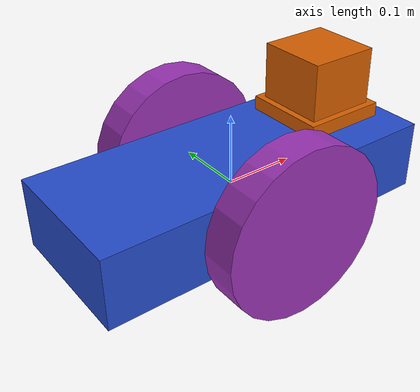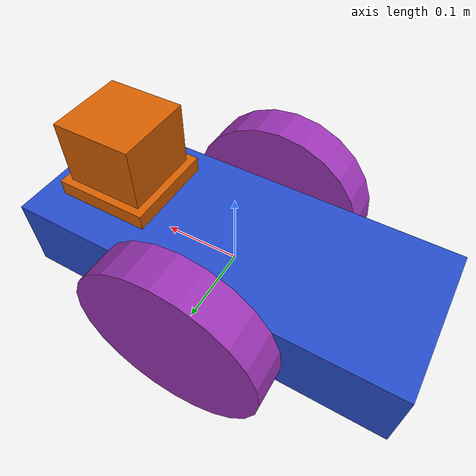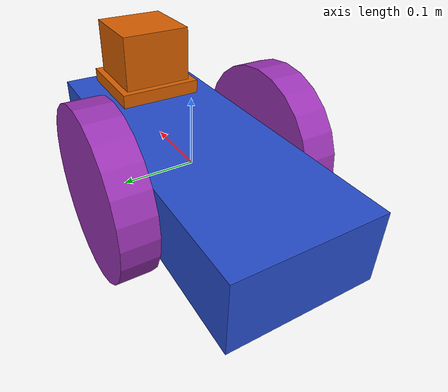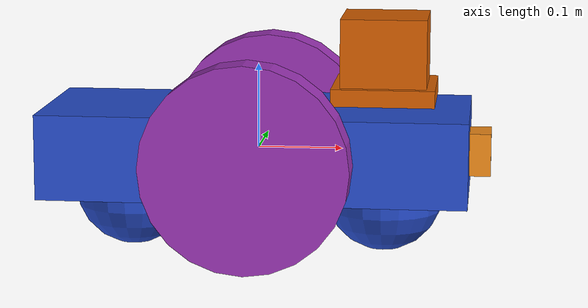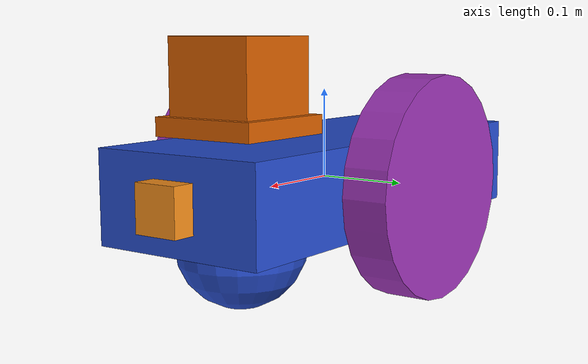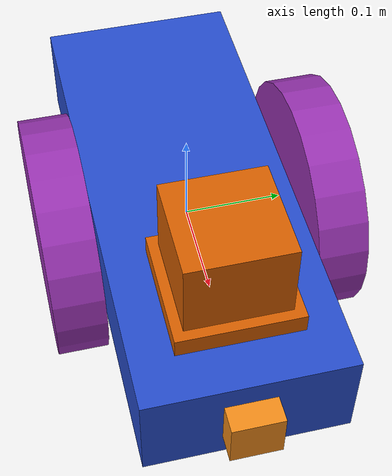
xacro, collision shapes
<robot name="my_robot" xmlns:xacro="http://www.ros.org/wiki/xacro">
<xacro:include filename="$(find my_robot)/urdf/my_robot.gazebo" />

  <link name="robot_footprint"></link>

  <joint name="robot_footprint_joint" type="fixed">
    <origin xyz="0 0 0" rpy="0 0 0" />
    <parent link="robot_footprint"/>
    <child link="chassis" />
  </joint>

  <link name='chassis'>
    <inertial>
      <mass value="15.0"/>
      <origin xyz="0.0 0 0" rpy=" 0 0 0"/>
      <inertia
          ixx="0.1" ixy="0" ixz="0"
          iyy="0.1" iyz="0"
          izz="0.1"
      />
    </inertial>

    <collision name='collision'>
      <origin xyz="0 0 0" rpy=" 0 0 0"/>
      <geometry>
        <box size=".5 .2 .1"/>
      </geometry>
    </collision>

    <visual name='chassis_visual'>
      <origin xyz="0 0 0" rpy=" 0 0 0"/>
      <geometry>
        <box size=".5 .2 .1"/>
      </geometry>
    </visual>

    <collision name='front_caster_collision'>
      <origin xyz="-0.15 0 -0.05" rpy=" 0 0 0"/>
      <geometry>
        <sphere radius="0.07"/>
      </geometry>
    </collision>

    <visual name='front_caster_visual'>
      <origin xyz="-0.15 0 -0.05" rpy=" 0 0 0"/>
      <geometry>
        <sphere radius="0.07"/>
      </geometry>
    </visual>

    <collision name='back_caster_collision'>
      <origin xyz="0.15 0 -0.05" rpy=" 0 0 0"/>
      <geometry>
        <sphere radius="0.07"/>
      </geometry>
    </collision>

    <visual name='back_caster_visual'>
      <origin xyz="0.15 0 -0.05" rpy=" 0 0 0"/>
      <geometry>
        <sphere radius="0.07"/>
      </geometry>
    </visual>

  </link>

  <link name='left_wheel'>
    <inertial>
      <mass value="5.0"/>
      <origin xyz="0.0 0 0" rpy=" 0 0 0"/>
      <inertia
        ixx="0.1" ixy="0" ixz="0"
        iyy="0.1" iyz="0"
        izz="0.1"
      />
    </inertial>

    <collision name='left_wheel_collision'>
      <origin xyz="0 0 0" rpy=" 0 1.5707 1.5707"/>
      <geometry>
        <cylinder radius="0.12" length="0.05"/>
      </geometry>
    </collision>

    <visual name='left_wheel_visual'>
      <origin xyz="0 0 0" rpy=" 0 1.5707 1.5707"/>
      <geometry>
        <cylinder radius="0.12" length="0.05"/>
      </geometry>
    </visual>

  </link>

  <joint name="left_wheel_hinge" type="continuous">
    <origin xyz="0 -0.13 0" rpy="0 0 0" />
    <axis xyz="0 1 0" rpy="0 0 0"/>
    <limit effort="10000" velocity="1000"/>
    <dynamics damping="1.0" friction="1.0"/>
    <parent link="chassis"/>
    <child link="left_wheel" />
  </joint>

  <link name='right_wheel'>
    <inertial>
      <mass value="5.0"/>
      <origin xyz="0.0 0 0" rpy=" 0 0 0"/>
      <inertia
        ixx="0.1" ixy="0" ixz="0"
        iyy="0.1" iyz="0"
        izz="0.1"
      />
    </inertial>

    <collision name='right_wheel_collision'>
      <origin xyz="0 0 0" rpy=" 0 1.5707 1.5707"/>
      <geometry>
        <cylinder radius="0.12" length="0.05"/>
      </geometry>
    </collision>

    <visual name='right_wheel_visual'>
      <origin xyz="0 0 0" rpy=" 0 1.5707 1.5707"/>
      <geometry>
        <cylinder radius="0.12" length="0.05"/>
      </geometry>
    </visual>

  </link>

  <joint name="right_wheel_hinge" type="continuous">
    <origin xyz="0 0.13 0" rpy="0 0 0" />
    <axis xyz="0 1 0" rpy="0 0 0"/>
    <limit effort="10000" velocity="1000"/>
    <dynamics damping="1.0" friction="1.0"/>
    <parent link="chassis"/>
    <child link="right_wheel" />
  </joint>

<gazebo reference="chassis">
    <material>Gazebo/BlueGlow</material>
</gazebo>

<gazebo reference="left_wheel">
    <material>Gazebo/PurpleGlow</material>
</gazebo>

<gazebo reference="right_wheel">
    <material>Gazebo/PurpleGlow</material>
</gazebo>

  <link name="camera">
    <origin xyz="0 0 0" rpy="0 0 0" />

    <inertial>
      <mass value="0.1"/>
      <origin xyz="0.0 0 0" rpy=" 0 0 0"/>
      <inertia ixx="1e-6" ixy="0" ixz="0" iyy="1e-6" iyz="0" izz="1e-6" />
    </inertial>

    <collision>
      <origin xyz="0 0 0" rpy=" 0 0 0"/>
      <geometry>
        <box size=".05 .05 .05"/>
      </geometry>
    </collision>

    <visual>
      <origin xyz="0 0 0" rpy=" 0 0 0"/>
      <geometry>
        <box size=".05 .05 .05"/>
      </geometry>
    </visual>

  </link>

  <joint name="camera_joint" type="fixed">
    <axis xyz="0 1 0" rpy="0 0 0"/>
    <origin xyz="0.25 0 0" rpy="0 0 0" />
    <parent link="chassis"/>
    <child link="camera" />
  </joint>

  <link name="hokuyo">
     <origin xyz="0 0 0" rpy="0 0 0" />
    <collision name="base-collision">
      <origin xyz="0 0 0.06" rpy=" 0 0 0"/>
      <geometry>
        <box size=".12 .12 .02"/>
      </geometry>
    </collision>

    <visual name="base-visual">
      <origin xyz="0 0 0.06" rpy=" 0 0 0"/>
      <geometry>
        <box size=".12 .12 .02"/>
      </geometry>
    </visual>

    <collision>
      <origin xyz="0 0 .1" rpy=" 0 0 0"/>
      <geometry>
        <box size=".1 .1 .1"/>
      </geometry>
    </collision>

    <visual>
      <origin xyz="0 0 .1" rpy=" 0 0 0"/>
      <geometry>
        <mesh filename="package://my_robot/meshes/hokuyo.dae"/>
      </geometry>
    </visual>

    <inertial>
      <mass value="1e-5"/>
      <origin xyz="0.0 0 0" rpy=" 0 0 0"/>
      <inertia  ixx="1e-6" ixy="0" ixz="0" iyy="1e-6" iyz="0" izz="1e-6" />
    </inertial>
  </link>

  <joint name="hokuyo_joint" type="fixed">
    <axis xyz="0 1 0" rpy="0 0 0"/>
    <origin xyz="0.15 0 0.01" rpy="0 0 0" />
    <parent link="chassis"/>
    <child link="hokuyo" />
  </joint>

<gazebo reference="camera">
    <material>Gazebo/Orange</material>
</gazebo>

</robot>
